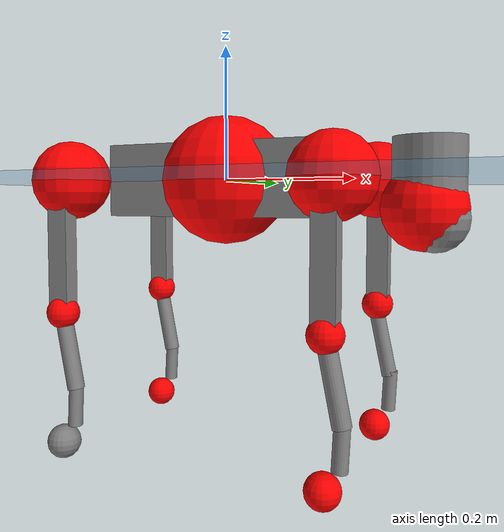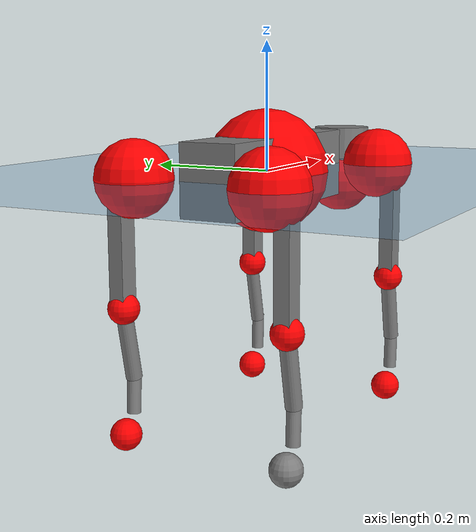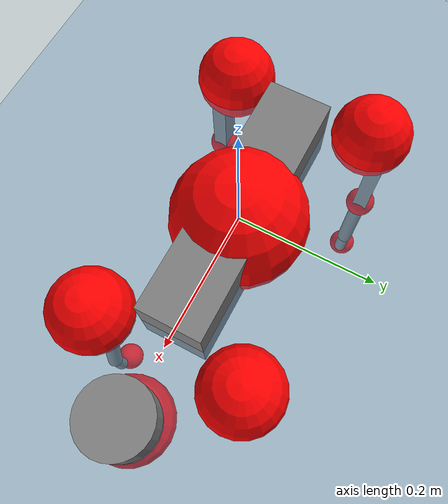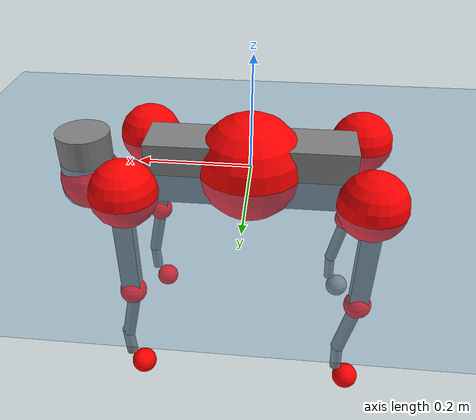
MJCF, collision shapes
<mujoco model="go2">
  <compiler angle="radian" assetdir="assets" balanceinertia="true" inertiafromgeom="false"/>

  <option timestep="0.005" density="1.2" viscosity="2e-05"/>

  <size nkey="1"/>

  <visual>
    <quality shadowsize="8192"/>
    <map shadowclip="0.5"/>
  </visual>

  <default>
    <default class="/">
      <geom contype="0" conaffinity="0" group="1" solref="-1000 -80"/>
      <site size="0.01 0.005 0.005" group="5"/>
      <general forcelimited="true" biastype="affine" gainprm="20" biasprm="0 -20 -0.5"/>
      <default class="go2">
        <joint armature="0.01" damping="0.01" frictionloss="0.2"/>
        <geom condim="1" margin="0.001"/>
        <default class="visual">
          <geom type="mesh" group="2"/>
        </default>
        <default class="collision">
          <geom group="3"/>
          <default class="foot">
            <geom size="0.022 0 0" condim="6" priority="1" friction="0.8 0.02 0.01" solimp="0.015 1 0.022"/>
          </default>
        </default>
        <default class="reward_collision_sphere">
          <geom group="5" rgba="1 0 0 1"/>
        </default>
      </default>
    </default>
  </default>

  <asset>
    <texture type="skybox" colorspace="auto" name="//unnamed_texture_0" builtin="gradient" rgb1="0.95 0.95 0.95" rgb2="0.95 0.95 0.95" width="100" height="600"/>
    <texture type="2d" colorspace="auto" name="texplane" builtin="checker" rgb1="0.345 0.575 0.748" rgb2="0.345 0.575 0.748" markrgb="1 1 1" width="512" height="512"/>
    <material name="MatPlane" class="/" texture="texplane" texuniform="true" texrepeat="2 2" specular="0.9"/>
    <material name="metal" class="/" rgba="0.9 0.95 0.95 1"/>
    <material name="black" class="/" rgba="0 0 0 1"/>
    <material name="white" class="/"/>
    <material name="gray" class="/" rgba="0.671705 0.692426 0.77427 1"/>
    <mesh name="base_0" class="/" file="base_0.obj"/>
    <mesh name="base_1" class="/" file="base_1.obj"/>
    <mesh name="base_2" class="/" file="base_2.obj"/>
    <mesh name="base_3" class="/" file="base_3.obj"/>
    <mesh name="base_4" class="/" file="base_4.obj"/>
    <mesh name="hip_0" class="/" file="hip_0.obj"/>
    <mesh name="hip_1" class="/" file="hip_1.obj"/>
    <mesh name="thigh_0" class="/" file="thigh_0.obj"/>
    <mesh name="thigh_1" class="/" file="thigh_1.obj"/>
    <mesh name="thigh_mirror_0" class="/" file="thigh_mirror_0.obj"/>
    <mesh name="thigh_mirror_1" class="/" file="thigh_mirror_1.obj"/>
    <mesh name="calf_0" class="/" file="calf_0.obj"/>
    <mesh name="calf_1" class="/" file="calf_1.obj"/>
    <mesh name="calf_mirror_0" class="/" file="calf_mirror_0.obj"/>
    <mesh name="calf_mirror_1" class="/" file="calf_mirror_1.obj"/>
    <mesh name="foot" class="/" file="foot.obj"/>
  </asset>

  <worldbody>
    <geom name="floor" class="/" size="100 100 0.125" type="plane" group="0" material="MatPlane"/>
    <light name="toplight_shadow" class="/" pos="0 0 5" dir="0.0990148 0.0990148 -0.990148" type="directional" ambient="0.04 0.04 0.04" diffuse="0.55 0.55 0.55" specular="0.12 0.12 0.12"/>
    <light name="toplight_fill" class="/" pos="0 0 5" dir="0.0990148 0.0990148 -0.990148" type="directional" castshadow="false" ambient="0.04 0.04 0.04" diffuse="0.3 0.3 0.3" specular="0.08 0.08 0.08"/>
    <body name="trunk" childclass="go2" pos="0.000111055 0.000513795 0.000454668" quat="1 0.000215387 -0.000117734 1.44404e-05">
      <inertial pos="0.0230767 -0.00152931 -0.00515105" quat="0.00240876 0.712948 0.00163183 0.701211" mass="6.20774" diaginertia="0.132225 0.0718668 0.0157037"/>
      <joint name="//unnamed_joint_0" type="free" armature="0" damping="0" frictionloss="0"/>
      <geom name="//unnamed_geom_1" class="visual" material="black" mesh="base_0"/>
      <geom name="//unnamed_geom_2" class="visual" material="black" mesh="base_1"/>
      <geom name="//unnamed_geom_3" class="visual" material="black" mesh="base_2"/>
      <geom name="//unnamed_geom_4" class="visual" material="white" mesh="base_3"/>
      <geom name="//unnamed_geom_5" class="visual" material="gray" mesh="base_4"/>
      <geom name="trunk_1" class="collision" size="0.182575 0.0453769 0.0553259" type="box"/>
      <geom name="trunk_2" class="collision" size="0.0485315 0.0436783" pos="0.299536 0 0.00917889" type="cylinder"/>
      <geom name="trunk_3" class="collision" size="0.0456196" pos="0.307944 0 -0.0550733"/>
      <geom name="//unnamed_geom_9" class="reward_collision_sphere" size="0.097063"/>
      <geom name="//unnamed_geom_10" class="reward_collision_sphere" size="0.0582378" pos="0.294281 0 -0.041305"/>
      <site name="imu" pos="-0.0286789 -0.000586108 0.0382054" size="0.0097063"/>
      <camera name="track" pos="0 -1.88599 0" quat="0.707107 0.707107 0 0" mode="trackcom"/>
      <camera name="ego_camera" pos="0.327914 0 0.041305" quat="-0.5 -0.5 0.5 0.5"/>
      <body name="FL_hip" pos="0.202416 0.0440997 0.000500366" quat="1 -8.55101e-09 -4.62211e-05 -3.32424e-06">
        <inertial pos="-0.00584203 0.00183338 8.13472e-05" quat="0.493804 0.505187 0.508512 0.4923" mass="0.619804" diaginertia="0.00113786 0.000451372 0.000314708"/>
        <joint name="FL_hip_joint" pos="0 0 0" axis="1 -0.000597289 0.000525473" stiffness="0.0113878" range="-1.02869 1.04036" armature="0.00972611" damping="0.0106328" frictionloss="0.192781"/>
        <geom name="//unnamed_geom_11" class="visual" material="metal" mesh="hip_0"/>
        <geom name="//unnamed_geom_12" class="visual" material="gray" mesh="hip_1"/>
        <geom name="//unnamed_geom_13" class="collision" size="0.044649 0.0194126" pos="0 0.0754396 0" quat="0.707107 0.707107 0 0" type="cylinder"/>
        <geom name="//unnamed_geom_14" class="reward_collision_sphere" size="0.0582378" pos="0 0.0660096 0"/>
        <body name="FL_thigh" pos="-0.000771068 0.0889429 0.000291759" quat="1 -0.000398425 -5.10256e-05 0.000719969">
          <inertial pos="-0.00396864 -0.0191221 -0.0303617" quat="0.829286 0.0882754 -0.0175236 0.55153" mass="1.04291" diaginertia="0.00756765 0.00444376 0.000574116"/>
          <joint name="FL_thigh_joint" pos="0 0 0" axis="0.00468892 0.999985 -0.00272305" stiffness="0.00230157" range="-1.55853 3.47096" armature="0.0104914" damping="0.00850826" frictionloss="0.202723"/>
          <geom name="//unnamed_geom_15" class="visual" material="metal" mesh="thigh_0"/>
          <geom name="//unnamed_geom_16" class="visual" material="gray" mesh="thigh_1"/>
          <geom name="//unnamed_geom_17" class="collision" size="0.103372 0.0118902 0.0165007" pos="0 0 -0.0977551" quat="0.707107 0 0.707107 0" type="box"/>
          <body name="FL_calf" pos="-0.000991576 0.000243173 -0.195779" quat="1 2.65988e-05 -1.31083e-06 5.77018e-05">
            <inertial pos="0.00591953 0.000215748 -0.129516" quat="0.710432 0.00386944 -0.00179769 0.703753" mass="0.22078" diaginertia="0.00192764 0.00111605 3.47578e-05"/>
            <joint name="FL_calf_joint" pos="0 0 0" axis="0.000439911 1 -3.52884e-05" stiffness="0.00142379" range="-2.69107 -0.831417" armature="0.0101762" damping="0.00064012" frictionloss="0.188765"/>
            <geom name="//unnamed_geom_18" class="visual" material="gray" mesh="calf_0"/>
            <geom name="//unnamed_geom_19" class="visual" material="black" mesh="calf_1"/>
            <geom name="FL_calf0" class="collision" size="0.0116476 0.0582378" pos="0.00840804 0 -0.0550733" quat="0.994493 0 -0.104807 0" type="cylinder"/>
            <geom name="//unnamed_geom_21" class="collision" size="0.0106769 0.0315455" pos="0.0210201 0 -0.135848" quat="0.999688 0 0.0249974 0" type="cylinder"/>
            <geom name="//unnamed_geom_22" class="visual" pos="0 0 -0.19551" quat="1 0 0 0" material="black" mesh="foot"/>
            <geom name="FL_foot" class="foot" size="0.0167518" pos="-0.00210201 0 -0.19551"/>
            <geom name="//unnamed_geom_24" class="reward_collision_sphere" size="0.0242657"/>
            <geom name="//unnamed_geom_25" class="reward_collision_sphere" size="0.0242657" pos="-0.00210201 0 -0.19551"/>
            <site name="FL_foot" class="foot" pos="-0.00210201 0 -0.19551" size="0.0097063"/>
          </body>
        </body>
      </body>
      <body name="FR_hip" pos="0.202203 -0.0421111 -0.00064855" quat="1 0.000209006 2.2327e-05 -5.58107e-05">
        <inertial pos="-0.00603696 -0.00249452 -1.86478e-05" quat="0.494479 0.5062 0.499388 0.499863" mass="0.62464" diaginertia="0.00113531 0.000444661 0.000309307"/>
        <joint name="FR_hip_joint" pos="0 0 0" axis="0.999975 0.00673527 0.00222536" range="-1.03985 1.06045" armature="0.0102355" damping="0.0185632" frictionloss="0.191438"/>
        <geom name="//unnamed_geom_26" class="visual" pos="0 2.18716e-10 9.38117e-09" quat="4.63268e-05 1 0 0" material="metal" mesh="hip_0"/>
        <geom name="//unnamed_geom_27" class="visual" pos="0 3.54564e-10 -2.32032e-08" quat="4.63268e-05 1 0 0" material="gray" mesh="hip_1"/>
        <geom name="//unnamed_geom_28" class="collision" size="0.044649 0.0194126" pos="0 -0.0754396 0" quat="0.707107 0.707107 0 0" type="cylinder"/>
        <geom name="//unnamed_geom_29" class="reward_collision_sphere" size="0.0582378" pos="0 -0.0660096 0"/>
        <body name="FR_thigh" pos="-0.000114789 -0.0896309 -0.000348986" quat="1 -8.41519e-06 -0.000121134 -3.7306e-05">
          <inertial pos="-0.00498854 0.0217794 -0.0287036" quat="0.551916 -0.0234889 0.0840317 0.829322" mass="1.05125" diaginertia="0.00769391 0.0043626 0.000573417"/>
          <joint name="FR_thigh_joint" pos="0 0 0" axis="0.000114425 -1 -2.50455e-05" stiffness="0.00791984" range="-3.48536 1.55963" armature="0.00931228" damping="0.0142226" frictionloss="0.201211"/>
          <geom name="//unnamed_geom_30" class="visual" material="metal" mesh="thigh_mirror_0"/>
          <geom name="//unnamed_geom_31" class="visual" material="gray" mesh="thigh_mirror_1"/>
          <geom name="//unnamed_geom_32" class="collision" size="0.103372 0.0118902 0.0165007" pos="0 0 -0.0977551" quat="0.707107 0 0.707107 0" type="box"/>
          <body name="FR_calf" pos="0.000221817 0.000275101 -0.194241" quat="1 -7.20262e-05 -0.00010606 -3.20151e-05">
            <inertial pos="0.00727663 0.000213464 -0.129771" quat="0.705824 -0.00247713 -0.000965134 0.708382" mass="0.225106" diaginertia="0.00197011 0.00110899 3.56655e-05"/>
            <joint name="FR_calf_joint" pos="0 0 0" axis="0.000520917 -1 -0.000795843" range="0.828717 2.71793" armature="0.0094567" damping="0.00514625" frictionloss="0.201654"/>
            <geom name="//unnamed_geom_33" class="visual" material="gray" mesh="calf_mirror_0"/>
            <geom name="//unnamed_geom_34" class="visual" material="black" mesh="calf_mirror_1"/>
            <geom name="FR_calf0" class="collision" size="0.0126182 0.0582378" pos="0.0105101 0 -0.0550733" quat="0.995004 0 -0.0998334 0" type="cylinder"/>
            <geom name="//unnamed_geom_36" class="collision" size="0.0106769 0.0315455" pos="0.0210201 0 -0.135848" quat="0.999688 0 0.0249974 0" type="cylinder"/>
            <geom name="//unnamed_geom_37" class="visual" pos="0 0 -0.19551" quat="1 0 0 0" material="black" mesh="foot"/>
            <geom name="FR_foot" class="foot" size="0.0207532" pos="-0.00210201 0 -0.19551"/>
            <geom name="//unnamed_geom_39" class="reward_collision_sphere" size="0.0242657"/>
            <geom name="//unnamed_geom_40" class="reward_collision_sphere" size="0.0242657" pos="-0.00210201 0 -0.19551"/>
            <site name="FR_foot" class="foot" pos="-0.00210201 0 -0.19551" size="0.0097063"/>
          </body>
        </body>
      </body>
      <body name="RL_hip" pos="-0.203117 0.0428067 0.00181718" quat="1 -0.00031016 -0.000164557 -0.000472104">
        <inertial pos="0.00591848 0.00169768 -0.000644317" quat="0.505323 0.498656 0.496967 0.499014" mass="0.61294" diaginertia="0.00114053 0.000454536 0.000312576"/>
        <joint name="RL_hip_joint" pos="0 0 0" axis="-0.999824 0.0171336 -0.0076661" stiffness="0.00577861" range="-1.03554 1.06469" armature="0.00961902" damping="0.0153292" frictionloss="0.194319"/>
        <geom name="//unnamed_geom_41" class="visual" pos="-1.15966e-09 0 -2.27319e-07" quat="4.63268e-05 0 1 0" material="metal" mesh="hip_0"/>
        <geom name="//unnamed_geom_42" class="visual" pos="-1.87994e-09 0 -2.016e-07" quat="4.63268e-05 0 1 0" material="gray" mesh="hip_1"/>
        <geom name="//unnamed_geom_43" class="collision" size="0.044649 0.0194126" pos="0 0.0754396 0" quat="0.707107 0.707107 0 0" type="cylinder"/>
        <geom name="//unnamed_geom_44" class="reward_collision_sphere" size="0.0582378" pos="0 0.0660096 0"/>
        <body name="RL_thigh" pos="-0.000392598 0.0910877 0.000489413" quat="1 -9.64034e-05 0.000363649 -0.000418253">
          <inertial pos="-0.0036167 -0.0188499 -0.0309122" quat="0.82954 0.084719 -0.0200636 0.551619" mass="1.03267" diaginertia="0.00770802 0.00430387 0.000577754"/>
          <joint name="RL_thigh_joint" pos="0 0 0" axis="0.00567935 0.999982 0.00168504" stiffness="0.00167706" range="-0.533239 4.5443" armature="0.00943208" damping="0.00876891" frictionloss="0.20281"/>
          <geom name="//unnamed_geom_45" class="visual" material="metal" mesh="thigh_0"/>
          <geom name="//unnamed_geom_46" class="visual" material="gray" mesh="thigh_1"/>
          <geom name="//unnamed_geom_47" class="collision" size="0.103372 0.0118902 0.0165007" pos="0 0 -0.0977551" quat="0.707107 0 0.707107 0" type="box"/>
          <body name="RL_calf" pos="0.000128643 -0.000924613 -0.195314" quat="1 -0.000211298 0.000253178 -0.000126239">
            <inertial pos="0.00624185 3.43818e-05 -0.129948" quat="0.710696 0.00151461 -0.00445226 0.703484" mass="0.223253" diaginertia="0.00192945 0.00110057 3.4803e-05"/>
            <joint name="RL_calf_joint" pos="0 0 0" axis="-0.0043343 0.999979 -0.00475638" stiffness="0.00488299" range="-2.69118 -0.834615" armature="0.0105256" damping="0" frictionloss="0.200469"/>
            <geom name="//unnamed_geom_48" class="visual" material="gray" mesh="calf_0"/>
            <geom name="//unnamed_geom_49" class="visual" material="black" mesh="calf_1"/>
            <geom name="RL_calf0" class="collision" size="0.0126182 0.0582378" pos="0.0105101 0 -0.0550733" quat="0.995004 0 -0.0998334 0" type="cylinder"/>
            <geom name="//unnamed_geom_51" class="collision" size="0.0106769 0.0315455" pos="0.0210201 0 -0.135848" quat="0.999688 0 0.0249974 0" type="cylinder"/>
            <geom name="//unnamed_geom_52" class="visual" pos="0 0 -0.19551" quat="1 0 0 0" material="black" mesh="foot"/>
            <geom name="RL_foot" class="foot" size="0.0192532" pos="-0.00210201 0 -0.19551"/>
            <geom name="//unnamed_geom_54" class="reward_collision_sphere" size="0.0242657"/>
            <geom name="//unnamed_geom_55" class="reward_collision_sphere" size="0.0242657" pos="-0.00210201 0 -0.19551"/>
            <site name="RL_foot" class="foot" pos="-0.00210201 0 -0.19551" size="0.0097063"/>
          </body>
        </body>
      </body>
      <body name="RR_hip" pos="-0.20437 -0.0449219 -0.00115593" quat="1 -0.00027741 0.000644075 0.000596817">
        <inertial pos="0.00556187 -0.00152293 1.0588e-05" quat="0.498995 0.496915 0.498532 0.505516" mass="0.627469" diaginertia="0.00114624 0.000447304 0.000323897"/>
        <joint name="RR_hip_joint" pos="0 0 0" axis="-1 -0.000379772 -3.5025e-05" range="-1.05419 1.03728" armature="0.0102374" damping="0.00538922" frictionloss="0.186941"/>
        <geom name="//unnamed_geom_56" class="visual" pos="1.15592e-09 2.18716e-10 -2.367e-07" quat="2.14617e-09 4.63268e-05 4.63268e-05 -1" material="metal" mesh="hip_0"/>
        <geom name="//unnamed_geom_57" class="visual" pos="1.88919e-09 3.54564e-10 -1.78397e-07" quat="2.14617e-09 4.63268e-05 4.63268e-05 -1" material="gray" mesh="hip_1"/>
        <geom name="//unnamed_geom_58" class="collision" size="0.044649 0.0194126" pos="0 -0.0754396 0" quat="0.707107 0.707107 0 0" type="cylinder"/>
        <geom name="//unnamed_geom_59" class="reward_collision_sphere" size="0.0582378" pos="0 -0.0660096 0"/>
        <body name="RR_thigh" pos="0.00113999 -0.0905765 -6.81664e-06" quat="1 -0.000507228 -0.000309934 -9.34083e-05">
          <inertial pos="-0.00360817 0.0211818 -0.0297803" quat="0.550631 -0.0223591 0.0843682 0.830173" mass="1.04979" diaginertia="0.00760067 0.00438036 0.00057751"/>
          <joint name="RR_thigh_joint" pos="0 0 0" axis="-0.0086571 -0.999961 -0.00156708" range="-4.54211 0.559326" armature="0.00895847" damping="0.0131894" frictionloss="0.193559"/>
          <geom name="//unnamed_geom_60" class="visual" material="metal" mesh="thigh_mirror_0"/>
          <geom name="//unnamed_geom_61" class="visual" material="gray" mesh="thigh_mirror_1"/>
          <geom name="//unnamed_geom_62" class="collision" size="0.103372 0.0118902 0.0165007" pos="0 0 -0.0977551" quat="0.707107 0 0.707107 0" type="box"/>
          <body name="RR_calf" pos="0.000693122 -0.000768109 -0.195885" quat="1 0.000158305 -0.000229653 -0.00020113">
            <inertial pos="0.00739015 0.00112267 -0.129926" quat="0.703575 -0.00486053 0.00170497 0.710602" mass="0.218898" diaginertia="0.00190049 0.00107618 3.44243e-05"/>
            <joint name="RR_calf_joint" pos="0 0 0" axis="-0.000136407 -0.999986 0.00530619" stiffness="0.000796813" range="0.854661 2.7073" armature="0.0094271" damping="0.00956371" frictionloss="0.185223"/>
            <geom name="//unnamed_geom_63" class="visual" material="gray" mesh="calf_mirror_0"/>
            <geom name="//unnamed_geom_64" class="visual" material="black" mesh="calf_mirror_1"/>
            <geom name="RR_calf0" class="collision" size="0.0126182 0.0582378" pos="0.0105101 0 -0.0550733" quat="0.995004 0 -0.0998334 0" type="cylinder"/>
            <geom name="//unnamed_geom_66" class="collision" size="0.0106769 0.0315455" pos="0.0210201 0 -0.135848" quat="0.999688 0 0.0249974 0" type="cylinder"/>
            <geom name="//unnamed_geom_67" class="visual" pos="0 0 -0.19551" quat="1 0 0 0" material="black" mesh="foot"/>
            <geom name="RR_foot" class="foot" size="0.0248456" pos="-0.00210201 0 -0.19551"/>
            <geom name="//unnamed_geom_69" class="reward_collision_sphere" size="0.0242657"/>
            <geom name="//unnamed_geom_70" class="reward_collision_sphere" size="0.0242657" pos="-0.00210201 0 -0.19551"/>
            <site name="RR_foot" class="foot" pos="-0.00210201 0 -0.19551" size="0.0097063"/>
          </body>
        </body>
      </body>
    </body>
  </worldbody>

  <contact>
    <pair class="/" geom1="floor" geom2="FL_foot" name="//unnamed_contact_0"/>
    <pair class="/" geom1="floor" geom2="FR_foot" name="//unnamed_contact_1"/>
    <pair class="/" geom1="floor" geom2="RL_foot" name="//unnamed_contact_2"/>
    <pair class="/" geom1="floor" geom2="RR_foot" name="//unnamed_contact_3"/>
  </contact>

  <actuator>
    <general name="FL_hip" class="/" joint="FL_hip_joint" forcerange="-22.0808 22.0808" gainprm="19.4145" biasprm="0 -19.4145 -0.483408"/>
    <general name="FL_thigh" class="/" joint="FL_thigh_joint" forcerange="-22.8013 22.8013" gainprm="19.4145" biasprm="0 -19.4145 -0.483408"/>
    <general name="FL_calf" class="/" joint="FL_calf_joint" forcerange="-43.605 43.605" gainprm="19.4145" biasprm="0 -19.4145 -0.483408"/>
    <general name="FR_hip" class="/" joint="FR_hip_joint" forcerange="-23.7708 23.7708" gainprm="19.4145" biasprm="0 -19.4145 -0.483408"/>
    <general name="FR_thigh" class="/" joint="FR_thigh_joint" forcerange="-23.2108 23.2108" gainprm="19.4145" biasprm="0 -19.4145 -0.483408"/>
    <general name="FR_calf" class="/" joint="FR_calf_joint" forcerange="-44.1048 44.1048" gainprm="19.4145" biasprm="0 -19.4145 -0.483408"/>
    <general name="RL_hip" class="/" joint="RL_hip_joint" forcerange="-23.5401 23.5401" gainprm="19.4145" biasprm="0 -19.4145 -0.483408"/>
    <general name="RL_thigh" class="/" joint="RL_thigh_joint" forcerange="-23.2952 23.2952" gainprm="19.4145" biasprm="0 -19.4145 -0.483408"/>
    <general name="RL_calf" class="/" joint="RL_calf_joint" forcerange="-43.1299 43.1299" gainprm="19.4145" biasprm="0 -19.4145 -0.483408"/>
    <general name="RR_hip" class="/" joint="RR_hip_joint" forcerange="-23.8663 23.8663" gainprm="19.4145" biasprm="0 -19.4145 -0.483408"/>
    <general name="RR_thigh" class="/" joint="RR_thigh_joint" forcerange="-22.3522 22.3522" gainprm="19.4145" biasprm="0 -19.4145 -0.483408"/>
    <general name="RR_calf" class="/" joint="RR_calf_joint" forcerange="-45.9097 45.9097" gainprm="19.4145" biasprm="0 -19.4145 -0.483408"/>
  </actuator>

  <sensor>
    <gyro site="imu" name="imu_angular_velocity"/>
    <velocimeter site="imu" name="imu_linear_velocity"/>
    <framelinvel objtype="site" objname="FL_foot" name="FL_foot_global_linear_velocity"/>
    <framelinvel objtype="site" objname="FR_foot" name="FR_foot_global_linear_velocity"/>
    <framelinvel objtype="site" objname="RL_foot" name="RL_foot_global_linear_velocity"/>
    <framelinvel objtype="site" objname="RR_foot" name="RR_foot_global_linear_velocity"/>
  </sensor>

  <keyframe>
    <key name="home" qpos="0 0 0.325 1 0 0 0 0.1 0.8 -1.5 -0.1 -0.8 1.5 -0.1 0.8 -1.5 0.1 -0.8 1.5"/>
  </keyframe>
</mujoco>
